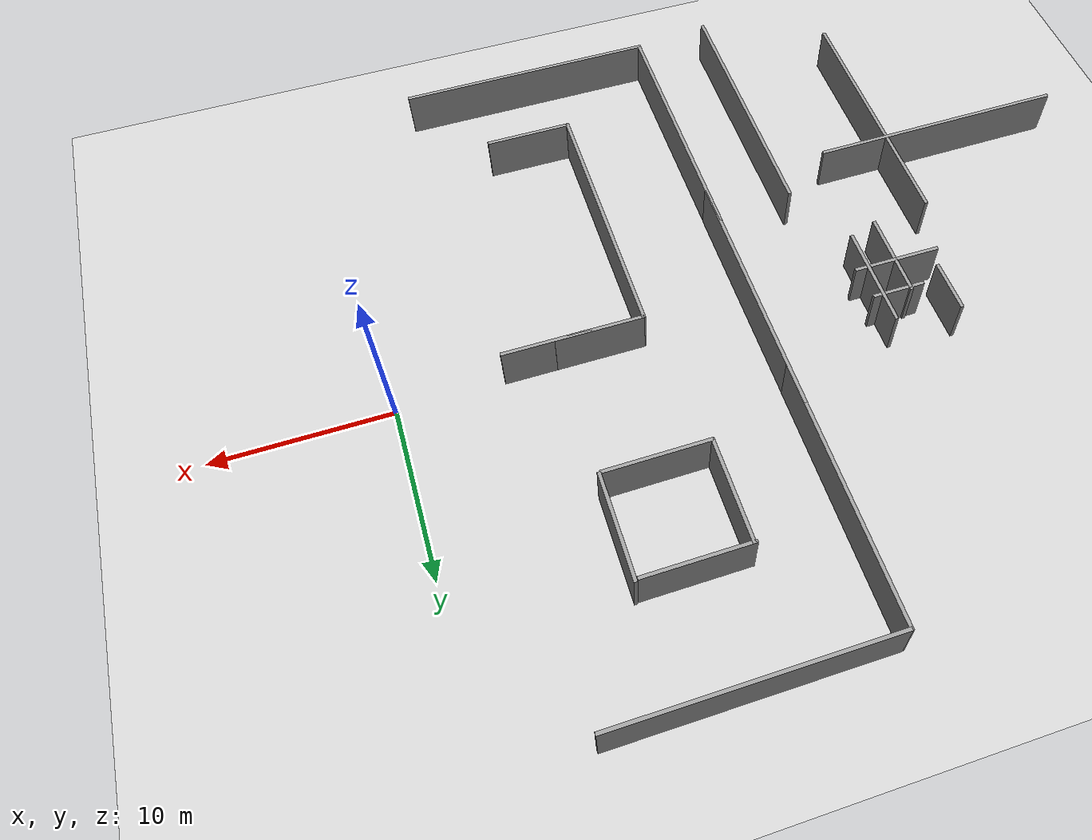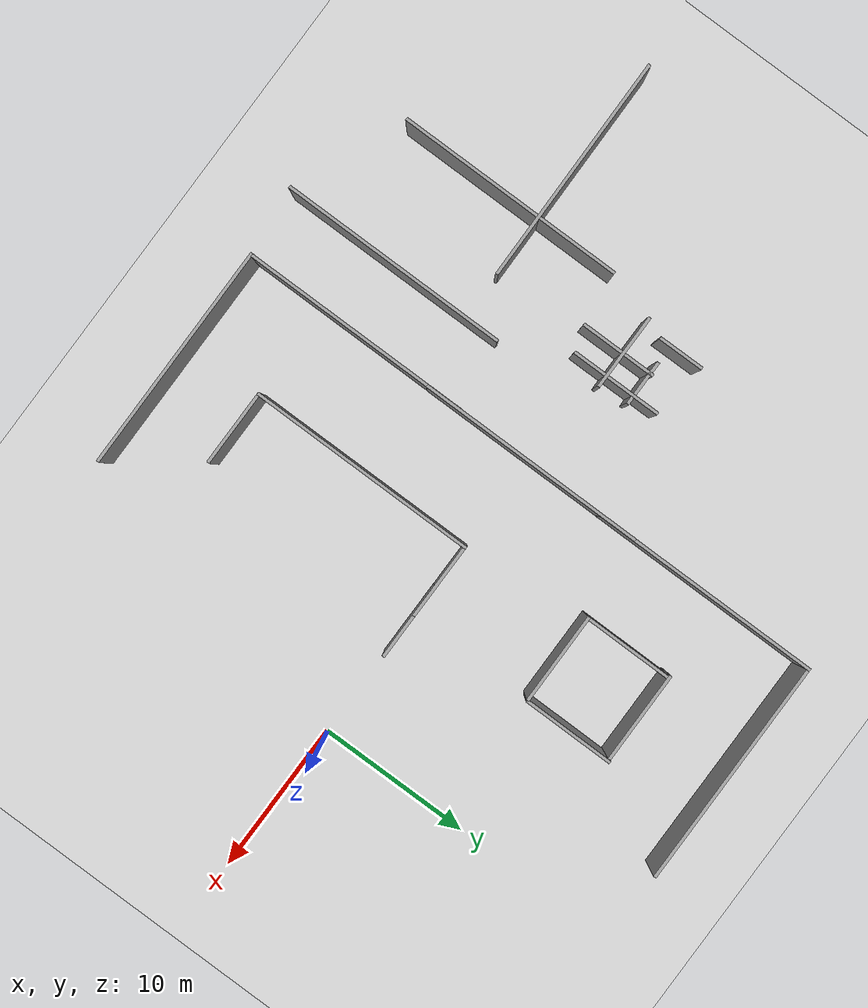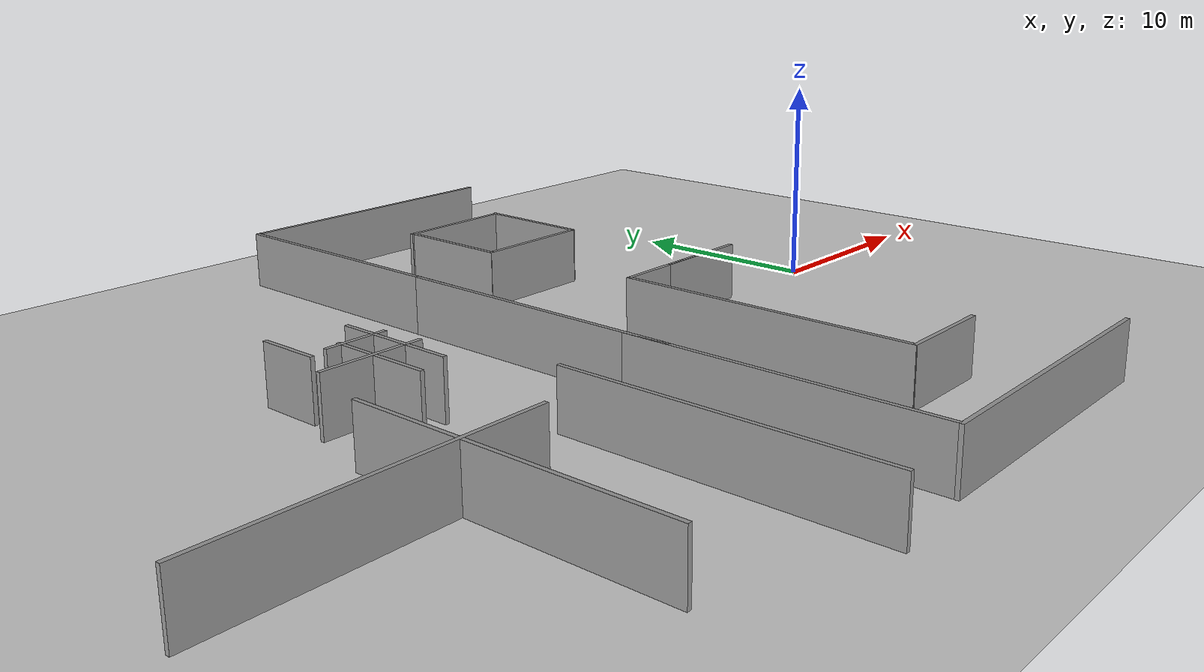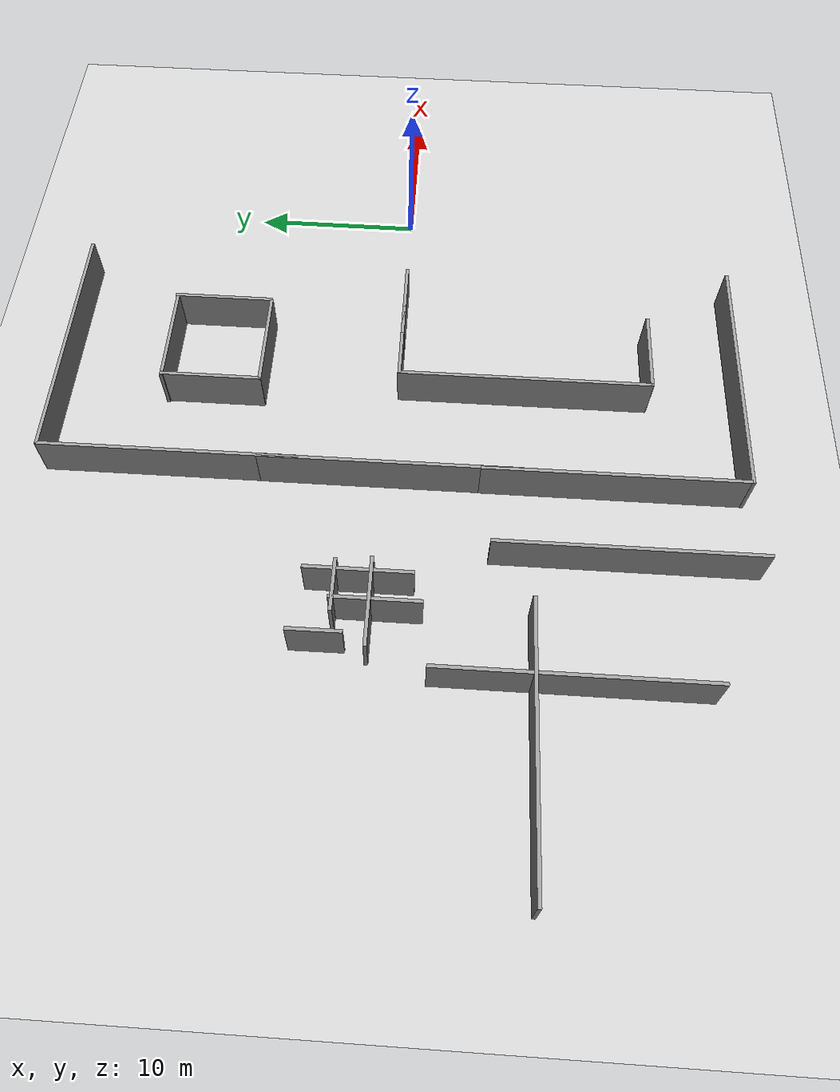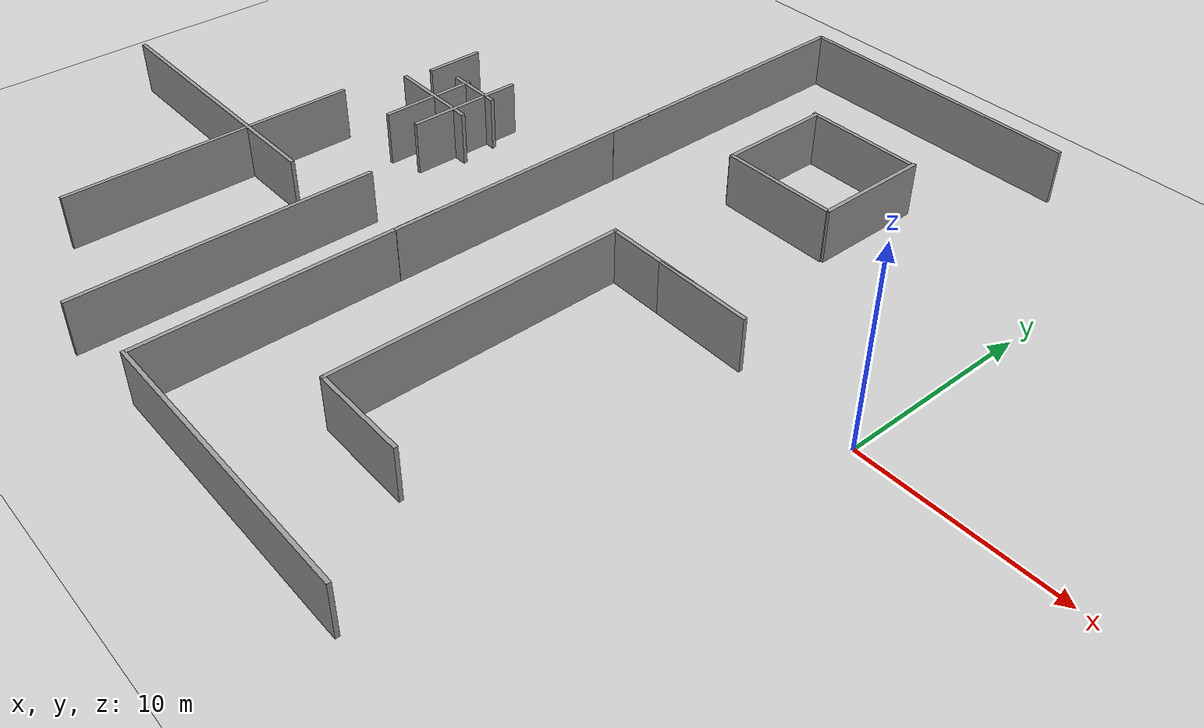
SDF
<sdf version="1.7">
 <world name="default">
  <model name="ground_plane">
   <static>1</static>
   <link name="link">
    <collision name="collision">
     <geometry><plane><normal>0 0 1</normal><size>100 100</size></plane></geometry>
     <surface>
      <contact><collide_bitmask>65535</collide_bitmask></contact>
      <friction><ode><mu>100</mu><mu2>50</mu2></ode></friction>
     </surface>
    </collision>
    <visual name="visual">
     <cast_shadows>0</cast_shadows>
     <geometry><plane><normal>0 0 1</normal><size>100 100</size></plane></geometry>
     <material>
      <script><uri>file://media/materials/scripts/gazebo.material</uri><name>Gazebo/Grey</name></script>
     </material>
    </visual>
   </link>
  </model>
  <model name="grey_wall_3_clone">
   <link name="link">
    <pose>0 0 1.4 0 -0 0</pose>
    <inertial>
     <mass>1</mass>
     <inertia><ixx>1</ixx><ixy>0</ixy><ixz>0</ixz><iyy>1</iyy><iyz>0</iyz><izz>1</izz></inertia>
    </inertial>
    <visual name="visual">
     <cast_shadows>0</cast_shadows>
     <geometry><box><size>3 0.2 2.8</size></box></geometry>
     <material>
      <script>
       <uri>model://grey_wall/materials/scripts</uri>
       <uri>model://grey_wall/materials/textures</uri>
       <name>vrc/grey_wall</name>
      </script>
      <shader type="pixel"><normal_map>__default__</normal_map></shader>
      <ambient>1 1 1 1</ambient>
      <diffuse>1 1 1 1</diffuse>
      <specular>0 0 0 1</specular>
      <emissive>0 0 0 1</emissive>
     </material>
    </visual>
    <collision name="collision">
     <geometry><box><size>2.96 0.2 2.8</size></box></geometry>
     <surface>
      <friction>
       <ode><mu>1</mu><mu2>1</mu2><fdir1>0 0 0</fdir1><slip1>0</slip1><slip2>0</slip2></ode>
       <torsional>
        <coefficient>1</coefficient>
        <patch_radius>0</patch_radius>
        <surface_radius>0</surface_radius>
        <use_patch_radius>1</use_patch_radius>
        <ode><slip>0</slip></ode>
       </torsional>
      </friction>
      <bounce><restitution_coefficient>0</restitution_coefficient><threshold>1e+06</threshold></bounce>
      <contact>
       <collide_without_contact>0</collide_without_contact>
       <collide_without_contact_bitmask>1</collide_without_contact_bitmask>
       <collide_bitmask>1</collide_bitmask>
       <ode>
        <soft_cfm>0</soft_cfm>
        <soft_erp>0.2</soft_erp>
        <kp>1e+13</kp>
        <kd>1</kd>
        <max_vel>0.01</max_vel>
        <min_depth>0</min_depth>
       </ode>
       <bullet>
        <split_impulse>1</split_impulse>
        <split_impulse_penetration_threshold>-0.01</split_impulse_penetration_threshold>
        <soft_cfm>0</soft_cfm>
        <soft_erp>0.2</soft_erp>
        <kp>1e+13</kp>
        <kd>1</kd>
       </bullet>
      </contact>
     </surface>
    </collision>
   </link>
   <static>1</static>
   <pose>-27.6676 2.53562 0 0 -0 0</pose>
  </model>
  <model name="grey_wall_5">
   <link name="link">
    <pose>0 0 1.4 0 -0 0</pose>
    <inertial>
     <mass>1</mass>
     <inertia><ixx>1</ixx><ixy>0</ixy><ixz>0</ixz><iyy>1</iyy><iyz>0</iyz><izz>1</izz></inertia>
    </inertial>
    <visual name="visual">
     <cast_shadows>0</cast_shadows>
     <geometry><box><size>5 0.2 2.8</size></box></geometry>
     <material>
      <script>
       <uri>model://grey_wall/materials/scripts</uri>
       <uri>model://grey_wall/materials/textures</uri>
       <name>vrc/grey_wall</name>
      </script>
      <shader type="pixel"><normal_map>__default__</normal_map></shader>
      <ambient>1 1 1 1</ambient>
      <diffuse>1 1 1 1</diffuse>
      <specular>0 0 0 1</specular>
      <emissive>0 0 0 1</emissive>
     </material>
    </visual>
    <collision name="collision">
     <geometry><box><size>5 0.2 2.8</size></box></geometry>
     <surface>
      <friction>
       <ode><mu>1</mu><mu2>1</mu2><fdir1>0 0 0</fdir1><slip1>0</slip1><slip2>0</slip2></ode>
       <torsional>
        <coefficient>1</coefficient>
        <patch_radius>0</patch_radius>
        <surface_radius>0</surface_radius>
        <use_patch_radius>1</use_patch_radius>
        <ode><slip>0</slip></ode>
       </torsional>
      </friction>
      <bounce><restitution_coefficient>0</restitution_coefficient><threshold>1e+06</threshold></bounce>
      <contact>
       <collide_without_contact>0</collide_without_contact>
       <collide_without_contact_bitmask>1</collide_without_contact_bitmask>
       <collide_bitmask>1</collide_bitmask>
       <ode>
        <soft_cfm>0</soft_cfm>
        <soft_erp>0.2</soft_erp>
        <kp>1e+13</kp>
        <kd>1</kd>
        <max_vel>0.01</max_vel>
        <min_depth>0</min_depth>
       </ode>
       <bullet>
        <split_impulse>1</split_impulse>
        <split_impulse_penetration_threshold>-0.01</split_impulse_penetration_threshold>
        <soft_cfm>0</soft_cfm>
        <soft_erp>0.2</soft_erp>
        <kp>1e+13</kp>
        <kd>1</kd>
       </bullet>
      </contact>
     </surface>
    </collision>
   </link>
   <static>1</static>
   <pose>-28.4609 0.59119 0 0 0 -0.000612</pose>
  </model>
  <model name="grey_wall_15_clone_0_clone">
   <link name="link">
    <pose>0 0 1.4 0 -0 0</pose>
    <inertial>
     <mass>1</mass>
     <inertia><ixx>1</ixx><ixy>0</ixy><ixz>0</ixz><iyy>1</iyy><iyz>0</iyz><izz>1</izz></inertia>
    </inertial>
    <visual name="visual">
     <cast_shadows>0</cast_shadows>
     <geometry><box><size>15 0.2 2.8</size></box></geometry>
     <material>
      <script>
       <uri>model://grey_wall/materials/scripts</uri>
       <uri>model://grey_wall/materials/textures</uri>
       <name>vrc/grey_wall</name>
      </script>
      <shader type="pixel"><normal_map>__default__</normal_map></shader>
      <ambient>1 1 1 1</ambient>
      <diffuse>1 1 1 1</diffuse>
      <specular>0 0 0 1</specular>
      <emissive>0 0 0 1</emissive>
     </material>
    </visual>
    <collision name="collision">
     <geometry><box><size>15 0.2 2.8</size></box></geometry>
     <surface>
      <friction>
       <ode><mu>1</mu><mu2>1</mu2><fdir1>0 0 0</fdir1><slip1>0</slip1><slip2>0</slip2></ode>
       <torsional>
        <coefficient>1</coefficient>
        <patch_radius>0</patch_radius>
        <surface_radius>0</surface_radius>
        <use_patch_radius>1</use_patch_radius>
        <ode><slip>0</slip></ode>
       </torsional>
      </friction>
      <bounce><restitution_coefficient>0</restitution_coefficient><threshold>1e+06</threshold></bounce>
      <contact>
       <collide_without_contact>0</collide_without_contact>
       <collide_without_contact_bitmask>1</collide_without_contact_bitmask>
       <collide_bitmask>1</collide_bitmask>
       <ode>
        <soft_cfm>0</soft_cfm>
        <soft_erp>0.2</soft_erp>
        <kp>1e+13</kp>
        <kd>1</kd>
        <max_vel>0.01</max_vel>
        <min_depth>0</min_depth>
       </ode>
       <bullet>
        <split_impulse>1</split_impulse>
        <split_impulse_penetration_threshold>-0.01</split_impulse_penetration_threshold>
        <soft_cfm>0</soft_cfm>
        <soft_erp>0.2</soft_erp>
        <kp>1e+13</kp>
        <kd>1</kd>
       </bullet>
      </contact>
     </surface>
    </collision>
   </link>
   <static>1</static>
   <pose>-31.7874 -10.0693 0 0 -0 1.57141</pose>
  </model>
  <model name="grey_wall_5_clone_clone_0_clone_0">
   <link name="link">
    <pose>0 0 1.4 0 -0 0</pose>
    <inertial>
     <mass>1</mass>
     <inertia><ixx>1</ixx><ixy>0</ixy><ixz>0</ixz><iyy>1</iyy><iyz>0</iyz><izz>1</izz></inertia>
    </inertial>
    <visual name="visual">
     <cast_shadows>0</cast_shadows>
     <geometry><box><size>5 0.2 2.8</size></box></geometry>
     <material>
      <script>
       <uri>model://grey_wall/materials/scripts</uri>
       <uri>model://grey_wall/materials/textures</uri>
       <name>vrc/grey_wall</name>
      </script>
      <shader type="pixel"><normal_map>__default__</normal_map></shader>
      <ambient>1 1 1 1</ambient>
      <diffuse>1 1 1 1</diffuse>
      <specular>0 0 0 1</specular>
      <emissive>0 0 0 1</emissive>
     </material>
    </visual>
    <collision name="collision">
     <geometry><box><size>5 0.2 2.8</size></box></geometry>
     <surface>
      <friction>
       <ode><mu>1</mu><mu2>1</mu2><fdir1>0 0 0</fdir1><slip1>0</slip1><slip2>0</slip2></ode>
       <torsional>
        <coefficient>1</coefficient>
        <patch_radius>0</patch_radius>
        <surface_radius>0</surface_radius>
        <use_patch_radius>1</use_patch_radius>
        <ode><slip>0</slip></ode>
       </torsional>
      </friction>
      <bounce><restitution_coefficient>0</restitution_coefficient><threshold>1e+06</threshold></bounce>
      <contact>
       <collide_without_contact>0</collide_without_contact>
       <collide_without_contact_bitmask>1</collide_without_contact_bitmask>
       <collide_bitmask>1</collide_bitmask>
       <ode>
        <soft_cfm>0</soft_cfm>
        <soft_erp>0.2</soft_erp>
        <kp>1e+13</kp>
        <kd>1</kd>
        <max_vel>0.01</max_vel>
        <min_depth>0</min_depth>
       </ode>
       <bullet>
        <split_impulse>1</split_impulse>
        <split_impulse_penetration_threshold>-0.01</split_impulse_penetration_threshold>
        <soft_cfm>0</soft_cfm>
        <soft_erp>0.2</soft_erp>
        <kp>1e+13</kp>
        <kd>1</kd>
       </bullet>
      </contact>
     </surface>
    </collision>
   </link>
   <static>1</static>
   <pose>-28.3665 0.251575 0 0 -0 1.57141</pose>
  </model>
  <model name="grey_wall_6_clone">
   <link name="link">
    <pose>0 0 1.4 0 -0 0</pose>
    <inertial>
     <mass>1</mass>
     <inertia><ixx>1</ixx><ixy>0</ixy><ixz>0</ixz><iyy>1</iyy><iyz>0</iyz><izz>1</izz></inertia>
    </inertial>
    <visual name="visual">
     <cast_shadows>0</cast_shadows>
     <geometry><box><size>6 0.2 2.8</size></box></geometry>
     <material>
      <script>
       <uri>model://grey_wall/materials/scripts</uri>
       <uri>model://grey_wall/materials/textures</uri>
       <name>vrc/grey_wall</name>
      </script>
      <shader type="pixel"><normal_map>__default__</normal_map></shader>
      <ambient>1 1 1 1</ambient>
      <diffuse>1 1 1 1</diffuse>
      <specular>0 0 0 1</specular>
      <emissive>0 0 0 1</emissive>
     </material>
    </visual>
    <collision name="collision">
     <geometry><box><size>6 0.2 2.8</size></box></geometry>
     <surface>
      <friction>
       <ode><mu>1</mu><mu2>1</mu2><fdir1>0 0 0</fdir1><slip1>0</slip1><slip2>0</slip2></ode>
       <torsional>
        <coefficient>1</coefficient>
        <patch_radius>0</patch_radius>
        <surface_radius>0</surface_radius>
        <use_patch_radius>1</use_patch_radius>
        <ode><slip>0</slip></ode>
       </torsional>
      </friction>
      <bounce><restitution_coefficient>0</restitution_coefficient><threshold>1e+06</threshold></bounce>
      <contact>
       <collide_without_contact>0</collide_without_contact>
       <collide_without_contact_bitmask>1</collide_without_contact_bitmask>
       <collide_bitmask>1</collide_bitmask>
       <ode>
        <soft_cfm>0</soft_cfm>
        <soft_erp>0.2</soft_erp>
        <kp>1e+13</kp>
        <kd>1</kd>
        <max_vel>0.01</max_vel>
        <min_depth>0</min_depth>
       </ode>
       <bullet>
        <split_impulse>1</split_impulse>
        <split_impulse_penetration_threshold>-0.01</split_impulse_penetration_threshold>
        <soft_cfm>0</soft_cfm>
        <soft_erp>0.2</soft_erp>
        <kp>1e+13</kp>
        <kd>1</kd>
       </bullet>
      </contact>
     </surface>
    </collision>
   </link>
   <static>1</static>
   <pose>-26.7573 1.28858 0 0 -0 1.57141</pose>
  </model>
  <model name="grey_wall_2_clone">
   <link name="link">
    <pose>0 0 1.4 0 -0 0</pose>
    <inertial>
     <mass>1</mass>
     <inertia><ixx>1</ixx><ixy>0</ixy><ixz>0</ixz><iyy>1</iyy><iyz>0</iyz><izz>1</izz></inertia>
    </inertial>
    <visual name="visual">
     <cast_shadows>0</cast_shadows>
     <geometry><box><size>3 0.2 2.8</size></box></geometry>
     <material>
      <script>
       <uri>model://grey_wall/materials/scripts</uri>
       <uri>model://grey_wall/materials/textures</uri>
       <name>vrc/grey_wall</name>
      </script>
      <shader type="pixel"><normal_map>__default__</normal_map></shader>
      <ambient>1 1 1 1</ambient>
      <diffuse>1 1 1 1</diffuse>
      <specular>0 0 0 1</specular>
      <emissive>0 0 0 1</emissive>
     </material>
    </visual>
    <collision name="collision">
     <geometry><box><size>3 0.2 2.8</size></box></geometry>
     <surface>
      <friction>
       <ode><mu>1</mu><mu2>1</mu2><fdir1>0 0 0</fdir1><slip1>0</slip1><slip2>0</slip2></ode>
       <torsional>
        <coefficient>1</coefficient>
        <patch_radius>0</patch_radius>
        <surface_radius>0</surface_radius>
        <use_patch_radius>1</use_patch_radius>
        <ode><slip>0</slip></ode>
       </torsional>
      </friction>
      <bounce><restitution_coefficient>0</restitution_coefficient><threshold>1e+06</threshold></bounce>
      <contact>
       <collide_without_contact>0</collide_without_contact>
       <collide_without_contact_bitmask>1</collide_without_contact_bitmask>
       <collide_bitmask>1</collide_bitmask>
       <ode>
        <soft_cfm>0</soft_cfm>
        <soft_erp>0.2</soft_erp>
        <kp>1e+13</kp>
        <kd>1</kd>
        <max_vel>0.01</max_vel>
        <min_depth>0</min_depth>
       </ode>
       <bullet>
        <split_impulse>1</split_impulse>
        <split_impulse_penetration_threshold>-0.01</split_impulse_penetration_threshold>
        <soft_cfm>0</soft_cfm>
        <soft_erp>0.2</soft_erp>
        <kp>1e+13</kp>
        <kd>1</kd>
       </bullet>
      </contact>
     </surface>
    </collision>
   </link>
   <static>1</static>
   <pose>-30.3361 3.25719 0.16865 0 0 -1.56489</pose>
  </model>
  <model name="grey_wall_15_clone_0_clone_clone_0">
   <link name="link">
    <pose>0 0 1.4 0 -0 0</pose>
    <inertial>
     <mass>1</mass>
     <inertia><ixx>1</ixx><ixy>0</ixy><ixz>0</ixz><iyy>1</iyy><iyz>0</iyz><izz>1</izz></inertia>
    </inertial>
    <visual name="visual">
     <cast_shadows>0</cast_shadows>
     <geometry><box><size>15 0.2 2.8</size></box></geometry>
     <material>
      <script>
       <uri>model://grey_wall/materials/scripts</uri>
       <uri>model://grey_wall/materials/textures</uri>
       <name>vrc/grey_wall</name>
      </script>
      <shader type="pixel"><normal_map>__default__</normal_map></shader>
      <ambient>1 1 1 1</ambient>
      <diffuse>1 1 1 1</diffuse>
      <specular>0 0 0 1</specular>
      <emissive>0 0 0 1</emissive>
     </material>
    </visual>
    <collision name="collision">
     <geometry><box><size>15 0.2 2.8</size></box></geometry>
     <surface>
      <friction>
       <ode><mu>1</mu><mu2>1</mu2><fdir1>0 0 0</fdir1><slip1>0</slip1><slip2>0</slip2></ode>
       <torsional>
        <coefficient>1</coefficient>
        <patch_radius>0</patch_radius>
        <surface_radius>0</surface_radius>
        <use_patch_radius>1</use_patch_radius>
        <ode><slip>0</slip></ode>
       </torsional>
      </friction>
      <bounce><restitution_coefficient>0</restitution_coefficient><threshold>1e+06</threshold></bounce>
      <contact>
       <collide_without_contact>0</collide_without_contact>
       <collide_without_contact_bitmask>1</collide_without_contact_bitmask>
       <collide_bitmask>1</collide_bitmask>
       <ode>
        <soft_cfm>0</soft_cfm>
        <soft_erp>0.2</soft_erp>
        <kp>1e+13</kp>
        <kd>1</kd>
        <max_vel>0.01</max_vel>
        <min_depth>0</min_depth>
       </ode>
       <bullet>
        <split_impulse>1</split_impulse>
        <split_impulse_penetration_threshold>-0.01</split_impulse_penetration_threshold>
        <soft_cfm>0</soft_cfm>
        <soft_erp>0.2</soft_erp>
        <kp>1e+13</kp>
        <kd>1</kd>
       </bullet>
      </contact>
     </surface>
    </collision>
   </link>
   <static>1</static>
   <pose>-20.114 0.093653 0 0 -0 1.57141</pose>
  </model>
  <model name="grey_wall_15_clone_0_clone_clone_0_clone">
   <link name="link">
    <pose>0 0 1.4 0 -0 0</pose>
    <inertial>
     <mass>1</mass>
     <inertia><ixx>1</ixx><ixy>0</ixy><ixz>0</ixz><iyy>1</iyy><iyz>0</iyz><izz>1</izz></inertia>
    </inertial>
    <visual name="visual">
     <cast_shadows>0</cast_shadows>
     <geometry><box><size>15 0.2 2.8</size></box></geometry>
     <material>
      <script>
       <uri>model://grey_wall/materials/scripts</uri>
       <uri>model://grey_wall/materials/textures</uri>
       <name>vrc/grey_wall</name>
      </script>
      <shader type="pixel"><normal_map>__default__</normal_map></shader>
      <ambient>1 1 1 1</ambient>
      <diffuse>1 1 1 1</diffuse>
      <specular>0 0 0 1</specular>
      <emissive>0 0 0 1</emissive>
     </material>
    </visual>
    <collision name="collision">
     <geometry><box><size>15 0.2 2.8</size></box></geometry>
     <surface>
      <friction>
       <ode><mu>1</mu><mu2>1</mu2><fdir1>0 0 0</fdir1><slip1>0</slip1><slip2>0</slip2></ode>
       <torsional>
        <coefficient>1</coefficient>
        <patch_radius>0</patch_radius>
        <surface_radius>0</surface_radius>
        <use_patch_radius>1</use_patch_radius>
        <ode><slip>0</slip></ode>
       </torsional>
      </friction>
      <bounce><restitution_coefficient>0</restitution_coefficient><threshold>1e+06</threshold></bounce>
      <contact>
       <collide_without_contact>0</collide_without_contact>
       <collide_without_contact_bitmask>1</collide_without_contact_bitmask>
       <collide_bitmask>1</collide_bitmask>
       <ode>
        <soft_cfm>0</soft_cfm>
        <soft_erp>0.2</soft_erp>
        <kp>1e+13</kp>
        <kd>1</kd>
        <max_vel>0.01</max_vel>
        <min_depth>0</min_depth>
       </ode>
       <bullet>
        <split_impulse>1</split_impulse>
        <split_impulse_penetration_threshold>-0.01</split_impulse_penetration_threshold>
        <soft_cfm>0</soft_cfm>
        <soft_erp>0.2</soft_erp>
        <kp>1e+13</kp>
        <kd>1</kd>
       </bullet>
      </contact>
     </surface>
    </collision>
   </link>
   <static>1</static>
   <pose>-20.1223 -12.5258 0 0 -0 1.57141</pose>
  </model>
  <model name="grey_wall_15_clone_0_clone_clone_0_clone_0">
   <link name="link">
    <pose>0 0 1.4 0 -0 0</pose>
    <inertial>
     <mass>1</mass>
     <inertia><ixx>1</ixx><ixy>0</ixy><ixz>0</ixz><iyy>1</iyy><iyz>0</iyz><izz>1</izz></inertia>
    </inertial>
    <visual name="visual">
     <cast_shadows>0</cast_shadows>
     <geometry><box><size>15 0.2 2.8</size></box></geometry>
     <material>
      <script>
       <uri>model://grey_wall/materials/scripts</uri>
       <uri>model://grey_wall/materials/textures</uri>
       <name>vrc/grey_wall</name>
      </script>
      <shader type="pixel"><normal_map>__default__</normal_map></shader>
      <ambient>1 1 1 1</ambient>
      <diffuse>1 1 1 1</diffuse>
      <specular>0 0 0 1</specular>
      <emissive>0 0 0 1</emissive>
     </material>
    </visual>
    <collision name="collision">
     <geometry><box><size>15 0.2 2.8</size></box></geometry>
     <surface>
      <friction>
       <ode><mu>1</mu><mu2>1</mu2><fdir1>0 0 0</fdir1><slip1>0</slip1><slip2>0</slip2></ode>
       <torsional>
        <coefficient>1</coefficient>
        <patch_radius>0</patch_radius>
        <surface_radius>0</surface_radius>
        <use_patch_radius>1</use_patch_radius>
        <ode><slip>0</slip></ode>
       </torsional>
      </friction>
      <bounce><restitution_coefficient>0</restitution_coefficient><threshold>1e+06</threshold></bounce>
      <contact>
       <collide_without_contact>0</collide_without_contact>
       <collide_without_contact_bitmask>1</collide_without_contact_bitmask>
       <collide_bitmask>1</collide_bitmask>
       <ode>
        <soft_cfm>0</soft_cfm>
        <soft_erp>0.2</soft_erp>
        <kp>1e+13</kp>
        <kd>1</kd>
        <max_vel>0.01</max_vel>
        <min_depth>0</min_depth>
       </ode>
       <bullet>
        <split_impulse>1</split_impulse>
        <split_impulse_penetration_threshold>-0.01</split_impulse_penetration_threshold>
        <soft_cfm>0</soft_cfm>
        <soft_erp>0.2</soft_erp>
        <kp>1e+13</kp>
        <kd>1</kd>
       </bullet>
      </contact>
     </surface>
    </collision>
   </link>
   <static>1</static>
   <pose>-20.1116 12.6835 0 0 -0 1.57141</pose>
  </model>
  <model name="grey_wall_15_clone_0_clone_clone_clone_1">
   <link name="link">
    <pose>0 0 1.4 0 -0 0</pose>
    <inertial>
     <mass>1</mass>
     <inertia><ixx>1</ixx><ixy>0</ixy><ixz>0</ixz><iyy>1</iyy><iyz>0</iyz><izz>1</izz></inertia>
    </inertial>
    <visual name="visual">
     <cast_shadows>0</cast_shadows>
     <geometry><box><size>15 0.2 2.8</size></box></geometry>
     <material>
      <script>
       <uri>model://grey_wall/materials/scripts</uri>
       <uri>model://grey_wall/materials/textures</uri>
       <name>vrc/grey_wall</name>
      </script>
      <shader type="pixel"><normal_map>__default__</normal_map></shader>
      <ambient>1 1 1 1</ambient>
      <diffuse>1 1 1 1</diffuse>
      <specular>0 0 0 1</specular>
      <emissive>0 0 0 1</emissive>
     </material>
    </visual>
    <collision name="collision">
     <geometry><box><size>15 0.2 2.8</size></box></geometry>
     <surface>
      <friction>
       <ode><mu>1</mu><mu2>1</mu2><fdir1>0 0 0</fdir1><slip1>0</slip1><slip2>0</slip2></ode>
       <torsional>
        <coefficient>1</coefficient>
        <patch_radius>0</patch_radius>
        <surface_radius>0</surface_radius>
        <use_patch_radius>1</use_patch_radius>
        <ode><slip>0</slip></ode>
       </torsional>
      </friction>
      <bounce><restitution_coefficient>0</restitution_coefficient><threshold>1e+06</threshold></bounce>
      <contact>
       <collide_without_contact>0</collide_without_contact>
       <collide_without_contact_bitmask>1</collide_without_contact_bitmask>
       <collide_bitmask>1</collide_bitmask>
       <ode>
        <soft_cfm>0</soft_cfm>
        <soft_erp>0.2</soft_erp>
        <kp>1e+13</kp>
        <kd>1</kd>
        <max_vel>0.01</max_vel>
        <min_depth>0</min_depth>
       </ode>
       <bullet>
        <split_impulse>1</split_impulse>
        <split_impulse_penetration_threshold>-0.01</split_impulse_penetration_threshold>
        <soft_cfm>0</soft_cfm>
        <soft_erp>0.2</soft_erp>
        <kp>1e+13</kp>
        <kd>1</kd>
       </bullet>
      </contact>
     </surface>
    </collision>
   </link>
   <static>1</static>
   <pose>-12.651 20.1007 0 0 -0 0.001488</pose>
  </model>
  <model name="grey_wall_15_clone_0_clone_clone_clone_1_clone">
   <link name="link">
    <pose>0 0 1.4 0 -0 0</pose>
    <inertial>
     <mass>1</mass>
     <inertia><ixx>1</ixx><ixy>0</ixy><ixz>0</ixz><iyy>1</iyy><iyz>0</iyz><izz>1</izz></inertia>
    </inertial>
    <visual name="visual">
     <cast_shadows>0</cast_shadows>
     <geometry><box><size>15 0.2 2.8</size></box></geometry>
     <material>
      <script>
       <uri>model://grey_wall/materials/scripts</uri>
       <uri>model://grey_wall/materials/textures</uri>
       <name>vrc/grey_wall</name>
      </script>
      <shader type="pixel"><normal_map>__default__</normal_map></shader>
      <ambient>1 1 1 1</ambient>
      <diffuse>1 1 1 1</diffuse>
      <specular>0 0 0 1</specular>
      <emissive>0 0 0 1</emissive>
     </material>
    </visual>
    <collision name="collision">
     <geometry><box><size>15 0.2 2.8</size></box></geometry>
     <surface>
      <friction>
       <ode><mu>1</mu><mu2>1</mu2><fdir1>0 0 0</fdir1><slip1>0</slip1><slip2>0</slip2></ode>
       <torsional>
        <coefficient>1</coefficient>
        <patch_radius>0</patch_radius>
        <surface_radius>0</surface_radius>
        <use_patch_radius>1</use_patch_radius>
        <ode><slip>0</slip></ode>
       </torsional>
      </friction>
      <bounce><restitution_coefficient>0</restitution_coefficient><threshold>1e+06</threshold></bounce>
      <contact>
       <collide_without_contact>0</collide_without_contact>
       <collide_without_contact_bitmask>1</collide_without_contact_bitmask>
       <collide_bitmask>1</collide_bitmask>
       <ode>
        <soft_cfm>0</soft_cfm>
        <soft_erp>0.2</soft_erp>
        <kp>1e+13</kp>
        <kd>1</kd>
        <max_vel>0.01</max_vel>
        <min_depth>0</min_depth>
       </ode>
       <bullet>
        <split_impulse>1</split_impulse>
        <split_impulse_penetration_threshold>-0.01</split_impulse_penetration_threshold>
        <soft_cfm>0</soft_cfm>
        <soft_erp>0.2</soft_erp>
        <kp>1e+13</kp>
        <kd>1</kd>
       </bullet>
      </contact>
     </surface>
    </collision>
   </link>
   <static>1</static>
   <pose>-12.7256 -20.0718 0 0 -0 0.001488</pose>
  </model>
  <model name="grey_wall_6_clone_0">
   <link name="link">
    <pose>0 0 1.4 0 -0 0</pose>
    <inertial>
     <mass>1</mass>
     <inertia><ixx>1</ixx><ixy>0</ixy><ixz>0</ixz><iyy>1</iyy><iyz>0</iyz><izz>1</izz></inertia>
    </inertial>
    <visual name="visual">
     <cast_shadows>0</cast_shadows>
     <geometry><box><size>6 0.2 2.8</size></box></geometry>
     <material>
      <script>
       <uri>model://grey_wall/materials/scripts</uri>
       <uri>model://grey_wall/materials/textures</uri>
       <name>vrc/grey_wall</name>
      </script>
      <shader type="pixel"><normal_map>__default__</normal_map></shader>
      <ambient>1 1 1 1</ambient>
      <diffuse>1 1 1 1</diffuse>
      <specular>0 0 0 1</specular>
      <emissive>0 0 0 1</emissive>
     </material>
    </visual>
    <collision name="collision">
     <geometry><box><size>6 0.2 2.8</size></box></geometry>
     <surface>
      <friction>
       <ode><mu>1</mu><mu2>1</mu2><fdir1>0 0 0</fdir1><slip1>0</slip1><slip2>0</slip2></ode>
       <torsional>
        <coefficient>1</coefficient>
        <patch_radius>0</patch_radius>
        <surface_radius>0</surface_radius>
        <use_patch_radius>1</use_patch_radius>
        <ode><slip>0</slip></ode>
       </torsional>
      </friction>
      <bounce><restitution_coefficient>0</restitution_coefficient><threshold>1e+06</threshold></bounce>
      <contact>
       <collide_without_contact>0</collide_without_contact>
       <collide_without_contact_bitmask>1</collide_without_contact_bitmask>
       <collide_bitmask>1</collide_bitmask>
       <ode>
        <soft_cfm>0</soft_cfm>
        <soft_erp>0.2</soft_erp>
        <kp>1e+13</kp>
        <kd>1</kd>
        <max_vel>0.01</max_vel>
        <min_depth>0</min_depth>
       </ode>
       <bullet>
        <split_impulse>1</split_impulse>
        <split_impulse_penetration_threshold>-0.01</split_impulse_penetration_threshold>
        <soft_cfm>0</soft_cfm>
        <soft_erp>0.2</soft_erp>
        <kp>1e+13</kp>
        <kd>1</kd>
       </bullet>
      </contact>
     </surface>
    </collision>
   </link>
   <static>1</static>
   <pose>-12.0539 13.9243 0 0 0 -3.13795</pose>
  </model>
  <model name="grey_wall_6_clone_0_clone">
   <link name="link">
    <pose>0 0 1.4 0 -0 0</pose>
    <inertial>
     <mass>1</mass>
     <inertia><ixx>1</ixx><ixy>0</ixy><ixz>0</ixz><iyy>1</iyy><iyz>0</iyz><izz>1</izz></inertia>
    </inertial>
    <visual name="visual">
     <cast_shadows>0</cast_shadows>
     <geometry><box><size>6 0.2 2.8</size></box></geometry>
     <material>
      <script>
       <uri>model://grey_wall/materials/scripts</uri>
       <uri>model://grey_wall/materials/textures</uri>
       <name>vrc/grey_wall</name>
      </script>
      <shader type="pixel"><normal_map>__default__</normal_map></shader>
      <ambient>1 1 1 1</ambient>
      <diffuse>1 1 1 1</diffuse>
      <specular>0 0 0 1</specular>
      <emissive>0 0 0 1</emissive>
     </material>
    </visual>
    <collision name="collision">
     <geometry><box><size>6 0.2 2.8</size></box></geometry>
     <surface>
      <friction>
       <ode><mu>1</mu><mu2>1</mu2><fdir1>0 0 0</fdir1><slip1>0</slip1><slip2>0</slip2></ode>
       <torsional>
        <coefficient>1</coefficient>
        <patch_radius>0</patch_radius>
        <surface_radius>0</surface_radius>
        <use_patch_radius>1</use_patch_radius>
        <ode><slip>0</slip></ode>
       </torsional>
      </friction>
      <bounce><restitution_coefficient>0</restitution_coefficient><threshold>1e+06</threshold></bounce>
      <contact>
       <collide_without_contact>0</collide_without_contact>
       <collide_without_contact_bitmask>1</collide_without_contact_bitmask>
       <collide_bitmask>1</collide_bitmask>
       <ode>
        <soft_cfm>0</soft_cfm>
        <soft_erp>0.2</soft_erp>
        <kp>1e+13</kp>
        <kd>1</kd>
        <max_vel>0.01</max_vel>
        <min_depth>0</min_depth>
       </ode>
       <bullet>
        <split_impulse>1</split_impulse>
        <split_impulse_penetration_threshold>-0.01</split_impulse_penetration_threshold>
        <soft_cfm>0</soft_cfm>
        <soft_erp>0.2</soft_erp>
        <kp>1e+13</kp>
        <kd>1</kd>
       </bullet>
      </contact>
     </surface>
    </collision>
   </link>
   <static>1</static>
   <pose>-11.9672 8.11602 0 0 0 -3.13795</pose>
  </model>
  <model name="grey_wall_6_clone_0_clone_clone">
   <link name="link">
    <pose>0 0 1.4 0 -0 0</pose>
    <inertial>
     <mass>1</mass>
     <inertia><ixx>1</ixx><ixy>0</ixy><ixz>0</ixz><iyy>1</iyy><iyz>0</iyz><izz>1</izz></inertia>
    </inertial>
    <visual name="visual">
     <cast_shadows>0</cast_shadows>
     <geometry><box><size>6 0.2 2.8</size></box></geometry>
     <material>
      <script>
       <uri>model://grey_wall/materials/scripts</uri>
       <uri>model://grey_wall/materials/textures</uri>
       <name>vrc/grey_wall</name>
      </script>
      <shader type="pixel"><normal_map>__default__</normal_map></shader>
      <ambient>1 1 1 1</ambient>
      <diffuse>1 1 1 1</diffuse>
      <specular>0 0 0 1</specular>
      <emissive>0 0 0 1</emissive>
     </material>
    </visual>
    <collision name="collision">
     <geometry><box><size>6 0.2 2.8</size></box></geometry>
     <surface>
      <friction>
       <ode><mu>1</mu><mu2>1</mu2><fdir1>0 0 0</fdir1><slip1>0</slip1><slip2>0</slip2></ode>
       <torsional>
        <coefficient>1</coefficient>
        <patch_radius>0</patch_radius>
        <surface_radius>0</surface_radius>
        <use_patch_radius>1</use_patch_radius>
        <ode><slip>0</slip></ode>
       </torsional>
      </friction>
      <bounce><restitution_coefficient>0</restitution_coefficient><threshold>1e+06</threshold></bounce>
      <contact>
       <collide_without_contact>0</collide_without_contact>
       <collide_without_contact_bitmask>1</collide_without_contact_bitmask>
       <collide_bitmask>1</collide_bitmask>
       <ode>
        <soft_cfm>0</soft_cfm>
        <soft_erp>0.2</soft_erp>
        <kp>1e+13</kp>
        <kd>1</kd>
        <max_vel>0.01</max_vel>
        <min_depth>0</min_depth>
       </ode>
       <bullet>
        <split_impulse>1</split_impulse>
        <split_impulse_penetration_threshold>-0.01</split_impulse_penetration_threshold>
        <soft_cfm>0</soft_cfm>
        <soft_erp>0.2</soft_erp>
        <kp>1e+13</kp>
        <kd>1</kd>
       </bullet>
      </contact>
     </surface>
    </collision>
   </link>
   <static>1</static>
   <pose>-8.93778 11.0965 0 0 -0 1.56941</pose>
  </model>
  <model name="grey_wall_6_clone_0_clone_clone_clone">
   <link name="link">
    <pose>0 0 1.4 0 -0 0</pose>
    <inertial>
     <mass>1</mass>
     <inertia><ixx>1</ixx><ixy>0</ixy><ixz>0</ixz><iyy>1</iyy><iyz>0</iyz><izz>1</izz></inertia>
    </inertial>
    <visual name="visual">
     <cast_shadows>0</cast_shadows>
     <geometry><box><size>6 0.2 2.8</size></box></geometry>
     <material>
      <script>
       <uri>model://grey_wall/materials/scripts</uri>
       <uri>model://grey_wall/materials/textures</uri>
       <name>vrc/grey_wall</name>
      </script>
      <shader type="pixel"><normal_map>__default__</normal_map></shader>
      <ambient>1 1 1 1</ambient>
      <diffuse>1 1 1 1</diffuse>
      <specular>0 0 0 1</specular>
      <emissive>0 0 0 1</emissive>
     </material>
    </visual>
    <collision name="collision">
     <geometry><box><size>6 0.2 2.8</size></box></geometry>
     <surface>
      <friction>
       <ode><mu>1</mu><mu2>1</mu2><fdir1>0 0 0</fdir1><slip1>0</slip1><slip2>0</slip2></ode>
       <torsional>
        <coefficient>1</coefficient>
        <patch_radius>0</patch_radius>
        <surface_radius>0</surface_radius>
        <use_patch_radius>1</use_patch_radius>
        <ode><slip>0</slip></ode>
       </torsional>
      </friction>
      <bounce><restitution_coefficient>0</restitution_coefficient><threshold>1e+06</threshold></bounce>
      <contact>
       <collide_without_contact>0</collide_without_contact>
       <collide_without_contact_bitmask>1</collide_without_contact_bitmask>
       <collide_bitmask>1</collide_bitmask>
       <ode>
        <soft_cfm>0</soft_cfm>
        <soft_erp>0.2</soft_erp>
        <kp>1e+13</kp>
        <kd>1</kd>
        <max_vel>0.01</max_vel>
        <min_depth>0</min_depth>
       </ode>
       <bullet>
        <split_impulse>1</split_impulse>
        <split_impulse_penetration_threshold>-0.01</split_impulse_penetration_threshold>
        <soft_cfm>0</soft_cfm>
        <soft_erp>0.2</soft_erp>
        <kp>1e+13</kp>
        <kd>1</kd>
       </bullet>
      </contact>
     </surface>
    </collision>
   </link>
   <static>1</static>
   <pose>-14.8767 11.0071 0 0 -0 1.56941</pose>
  </model>
  <model name="grey_wall_15_clone_0_clone_clone_1">
   <link name="link">
    <pose>0 0 1.4 0 -0 0</pose>
    <inertial>
     <mass>1</mass>
     <inertia><ixx>1</ixx><ixy>0</ixy><ixz>0</ixz><iyy>1</iyy><iyz>0</iyz><izz>1</izz></inertia>
    </inertial>
    <visual name="visual">
     <cast_shadows>0</cast_shadows>
     <geometry><box><size>15 0.2 2.8</size></box></geometry>
     <material>
      <script>
       <uri>model://grey_wall/materials/scripts</uri>
       <uri>model://grey_wall/materials/textures</uri>
       <name>vrc/grey_wall</name>
      </script>
      <shader type="pixel"><normal_map>__default__</normal_map></shader>
      <ambient>1 1 1 1</ambient>
      <diffuse>1 1 1 1</diffuse>
      <specular>0 0 0 1</specular>
      <emissive>0 0 0 1</emissive>
     </material>
    </visual>
    <collision name="collision">
     <geometry><box><size>15 0.2 2.8</size></box></geometry>
     <surface>
      <friction>
       <ode><mu>1</mu><mu2>1</mu2><fdir1>0 0 0</fdir1><slip1>0</slip1><slip2>0</slip2></ode>
       <torsional>
        <coefficient>1</coefficient>
        <patch_radius>0</patch_radius>
        <surface_radius>0</surface_radius>
        <use_patch_radius>1</use_patch_radius>
        <ode><slip>0</slip></ode>
       </torsional>
      </friction>
      <bounce><restitution_coefficient>0</restitution_coefficient><threshold>1e+06</threshold></bounce>
      <contact>
       <collide_without_contact>0</collide_without_contact>
       <collide_without_contact_bitmask>1</collide_without_contact_bitmask>
       <collide_bitmask>1</collide_bitmask>
       <ode>
        <soft_cfm>0</soft_cfm>
        <soft_erp>0.2</soft_erp>
        <kp>1e+13</kp>
        <kd>1</kd>
        <max_vel>0.01</max_vel>
        <min_depth>0</min_depth>
       </ode>
       <bullet>
        <split_impulse>1</split_impulse>
        <split_impulse_penetration_threshold>-0.01</split_impulse_penetration_threshold>
        <soft_cfm>0</soft_cfm>
        <soft_erp>0.2</soft_erp>
        <kp>1e+13</kp>
        <kd>1</kd>
       </bullet>
      </contact>
     </surface>
    </collision>
   </link>
   <static>1</static>
   <pose>-13.9145 -7.47366 0 0 -0 1.57141</pose>
  </model>
  <model name="grey_wall_15_clone_0_clone_clone_2">
   <link name="link">
    <pose>0 0 1.4 0 -0 0</pose>
    <inertial>
     <mass>1</mass>
     <inertia><ixx>1</ixx><ixy>0</ixy><ixz>0</ixz><iyy>1</iyy><iyz>0</iyz><izz>1</izz></inertia>
    </inertial>
    <visual name="visual">
     <cast_shadows>0</cast_shadows>
     <geometry><box><size>15 0.2 2.8</size></box></geometry>
     <material>
      <script>
       <uri>model://grey_wall/materials/scripts</uri>
       <uri>model://grey_wall/materials/textures</uri>
       <name>vrc/grey_wall</name>
      </script>
      <shader type="pixel"><normal_map>__default__</normal_map></shader>
      <ambient>1 1 1 1</ambient>
      <diffuse>1 1 1 1</diffuse>
      <specular>0 0 0 1</specular>
      <emissive>0 0 0 1</emissive>
     </material>
    </visual>
    <collision name="collision">
     <geometry><box><size>15 0.2 2.8</size></box></geometry>
     <surface>
      <friction>
       <ode><mu>1</mu><mu2>1</mu2><fdir1>0 0 0</fdir1><slip1>0</slip1><slip2>0</slip2></ode>
       <torsional>
        <coefficient>1</coefficient>
        <patch_radius>0</patch_radius>
        <surface_radius>0</surface_radius>
        <use_patch_radius>1</use_patch_radius>
        <ode><slip>0</slip></ode>
       </torsional>
      </friction>
      <bounce><restitution_coefficient>0</restitution_coefficient><threshold>1e+06</threshold></bounce>
      <contact>
       <collide_without_contact>0</collide_without_contact>
       <collide_without_contact_bitmask>1</collide_without_contact_bitmask>
       <collide_bitmask>1</collide_bitmask>
       <ode>
        <soft_cfm>0</soft_cfm>
        <soft_erp>0.2</soft_erp>
        <kp>1e+13</kp>
        <kd>1</kd>
        <max_vel>0.01</max_vel>
        <min_depth>0</min_depth>
       </ode>
       <bullet>
        <split_impulse>1</split_impulse>
        <split_impulse_penetration_threshold>-0.01</split_impulse_penetration_threshold>
        <soft_cfm>0</soft_cfm>
        <soft_erp>0.2</soft_erp>
        <kp>1e+13</kp>
        <kd>1</kd>
       </bullet>
      </contact>
     </surface>
    </collision>
   </link>
   <static>1</static>
   <pose>-24.6087 -13.1552 0 0 -0 1.57141</pose>
  </model>
  <model name="grey_wall_15_clone_0_clone_0_clone_clone">
   <link name="link">
    <pose>0 0 1.4 0 -0 0</pose>
    <inertial>
     <mass>1</mass>
     <inertia><ixx>1</ixx><ixy>0</ixy><ixz>0</ixz><iyy>1</iyy><iyz>0</iyz><izz>1</izz></inertia>
    </inertial>
    <visual name="visual">
     <cast_shadows>0</cast_shadows>
     <geometry><box><size>15 0.2 2.8</size></box></geometry>
     <material>
      <script>
       <uri>model://grey_wall/materials/scripts</uri>
       <uri>model://grey_wall/materials/textures</uri>
       <name>vrc/grey_wall</name>
      </script>
      <shader type="pixel"><normal_map>__default__</normal_map></shader>
      <ambient>1 1 1 1</ambient>
      <diffuse>1 1 1 1</diffuse>
      <specular>0 0 0 1</specular>
      <emissive>0 0 0 1</emissive>
     </material>
    </visual>
    <collision name="collision">
     <geometry><box><size>15 0.2 2.8</size></box></geometry>
     <surface>
      <friction>
       <ode><mu>1</mu><mu2>1</mu2><fdir1>0 0 0</fdir1><slip1>0</slip1><slip2>0</slip2></ode>
       <torsional>
        <coefficient>1</coefficient>
        <patch_radius>0</patch_radius>
        <surface_radius>0</surface_radius>
        <use_patch_radius>1</use_patch_radius>
        <ode><slip>0</slip></ode>
       </torsional>
      </friction>
      <bounce><restitution_coefficient>0</restitution_coefficient><threshold>1e+06</threshold></bounce>
      <contact>
       <collide_without_contact>0</collide_without_contact>
       <collide_without_contact_bitmask>1</collide_without_contact_bitmask>
       <collide_bitmask>1</collide_bitmask>
       <ode>
        <soft_cfm>0</soft_cfm>
        <soft_erp>0.2</soft_erp>
        <kp>1e+13</kp>
        <kd>1</kd>
        <max_vel>0.01</max_vel>
        <min_depth>0</min_depth>
       </ode>
       <bullet>
        <split_impulse>1</split_impulse>
        <split_impulse_penetration_threshold>-0.01</split_impulse_penetration_threshold>
        <soft_cfm>0</soft_cfm>
        <soft_erp>0.2</soft_erp>
        <kp>1e+13</kp>
        <kd>1</kd>
       </bullet>
      </contact>
     </surface>
    </collision>
   </link>
   <static>1</static>
   <pose>-35.1768 -8.07846 -0.000269 0.000759 0.000627 -3.13272</pose>
  </model>
  <model name="grey_wall_5_clone">
   <link name="link">
    <pose>0 0 1.4 0 -0 0</pose>
    <inertial>
     <mass>1</mass>
     <inertia><ixx>1</ixx><ixy>0</ixy><ixz>0</ixz><iyy>1</iyy><iyz>0</iyz><izz>1</izz></inertia>
    </inertial>
    <visual name="visual">
     <cast_shadows>0</cast_shadows>
     <geometry><box><size>5 0.2 2.8</size></box></geometry>
     <material>
      <script>
       <uri>model://grey_wall/materials/scripts</uri>
       <uri>model://grey_wall/materials/textures</uri>
       <name>vrc/grey_wall</name>
      </script>
      <shader type="pixel"><normal_map>__default__</normal_map></shader>
      <ambient>1 1 1 1</ambient>
      <diffuse>1 1 1 1</diffuse>
      <specular>0 0 0 1</specular>
      <emissive>0 0 0 1</emissive>
     </material>
    </visual>
    <collision name="collision">
     <geometry><box><size>5 0.2 2.8</size></box></geometry>
     <surface>
      <friction>
       <ode><mu>1</mu><mu2>1</mu2><fdir1>0 0 0</fdir1><slip1>0</slip1><slip2>0</slip2></ode>
       <torsional>
        <coefficient>1</coefficient>
        <patch_radius>0</patch_radius>
        <surface_radius>0</surface_radius>
        <use_patch_radius>1</use_patch_radius>
        <ode><slip>0</slip></ode>
       </torsional>
      </friction>
      <bounce><restitution_coefficient>0</restitution_coefficient><threshold>1e+06</threshold></bounce>
      <contact>
       <collide_without_contact>0</collide_without_contact>
       <collide_without_contact_bitmask>1</collide_without_contact_bitmask>
       <collide_bitmask>1</collide_bitmask>
       <ode>
        <soft_cfm>0</soft_cfm>
        <soft_erp>0.2</soft_erp>
        <kp>1e+13</kp>
        <kd>1</kd>
        <max_vel>0.01</max_vel>
        <min_depth>0</min_depth>
       </ode>
       <bullet>
        <split_impulse>1</split_impulse>
        <split_impulse_penetration_threshold>-0.01</split_impulse_penetration_threshold>
        <soft_cfm>0</soft_cfm>
        <soft_erp>0.2</soft_erp>
        <kp>1e+13</kp>
        <kd>1</kd>
       </bullet>
      </contact>
     </surface>
    </collision>
   </link>
   <static>1</static>
   <pose>-11.4511 -0.073141 0 0 0 -0.000612</pose>
  </model>
  <model name="grey_wall_5_clone_2">
   <link name="link">
    <pose>0 0 1.4 0 -0 0</pose>
    <inertial>
     <mass>1</mass>
     <inertia><ixx>1</ixx><ixy>0</ixy><ixz>0</ixz><iyy>1</iyy><iyz>0</iyz><izz>1</izz></inertia>
    </inertial>
    <visual name="visual">
     <cast_shadows>0</cast_shadows>
     <geometry><box><size>5 0.2 2.8</size></box></geometry>
     <material>
      <script>
       <uri>model://grey_wall/materials/scripts</uri>
       <uri>model://grey_wall/materials/textures</uri>
       <name>vrc/grey_wall</name>
      </script>
      <shader type="pixel"><normal_map>__default__</normal_map></shader>
      <ambient>1 1 1 1</ambient>
      <diffuse>1 1 1 1</diffuse>
      <specular>0 0 0 1</specular>
      <emissive>0 0 0 1</emissive>
     </material>
    </visual>
    <collision name="collision">
     <geometry><box><size>5 0.2 2.8</size></box></geometry>
     <surface>
      <friction>
       <ode><mu>1</mu><mu2>1</mu2><fdir1>0 0 0</fdir1><slip1>0</slip1><slip2>0</slip2></ode>
       <torsional>
        <coefficient>1</coefficient>
        <patch_radius>0</patch_radius>
        <surface_radius>0</surface_radius>
        <use_patch_radius>1</use_patch_radius>
        <ode><slip>0</slip></ode>
       </torsional>
      </friction>
      <bounce><restitution_coefficient>0</restitution_coefficient><threshold>1e+06</threshold></bounce>
      <contact>
       <collide_without_contact>0</collide_without_contact>
       <collide_without_contact_bitmask>1</collide_without_contact_bitmask>
       <collide_bitmask>1</collide_bitmask>
       <ode>
        <soft_cfm>0</soft_cfm>
        <soft_erp>0.2</soft_erp>
        <kp>1e+13</kp>
        <kd>1</kd>
        <max_vel>0.01</max_vel>
        <min_depth>0</min_depth>
       </ode>
       <bullet>
        <split_impulse>1</split_impulse>
        <split_impulse_penetration_threshold>-0.01</split_impulse_penetration_threshold>
        <soft_cfm>0</soft_cfm>
        <soft_erp>0.2</soft_erp>
        <kp>1e+13</kp>
        <kd>1</kd>
       </bullet>
      </contact>
     </surface>
    </collision>
   </link>
   <static>1</static>
   <pose>-8.51515 -0.08046 0 0 0 -0.000612</pose>
  </model>
  <model name="grey_wall_5_clone_3">
   <link name="link">
    <pose>0 0 1.4 0 -0 0</pose>
    <inertial>
     <mass>1</mass>
     <inertia><ixx>1</ixx><ixy>0</ixy><ixz>0</ixz><iyy>1</iyy><iyz>0</iyz><izz>1</izz></inertia>
    </inertial>
    <visual name="visual">
     <cast_shadows>0</cast_shadows>
     <geometry><box><size>5 0.2 2.8</size></box></geometry>
     <material>
      <script>
       <uri>model://grey_wall/materials/scripts</uri>
       <uri>model://grey_wall/materials/textures</uri>
       <name>vrc/grey_wall</name>
      </script>
      <shader type="pixel"><normal_map>__default__</normal_map></shader>
      <ambient>1 1 1 1</ambient>
      <diffuse>1 1 1 1</diffuse>
      <specular>0 0 0 1</specular>
      <emissive>0 0 0 1</emissive>
     </material>
    </visual>
    <collision name="collision">
     <geometry><box><size>5 0.2 2.8</size></box></geometry>
     <surface>
      <friction>
       <ode><mu>1</mu><mu2>1</mu2><fdir1>0 0 0</fdir1><slip1>0</slip1><slip2>0</slip2></ode>
       <torsional>
        <coefficient>1</coefficient>
        <patch_radius>0</patch_radius>
        <surface_radius>0</surface_radius>
        <use_patch_radius>1</use_patch_radius>
        <ode><slip>0</slip></ode>
       </torsional>
      </friction>
      <bounce><restitution_coefficient>0</restitution_coefficient><threshold>1e+06</threshold></bounce>
      <contact>
       <collide_without_contact>0</collide_without_contact>
       <collide_without_contact_bitmask>1</collide_without_contact_bitmask>
       <collide_bitmask>1</collide_bitmask>
       <ode>
        <soft_cfm>0</soft_cfm>
        <soft_erp>0.2</soft_erp>
        <kp>1e+13</kp>
        <kd>1</kd>
        <max_vel>0.01</max_vel>
        <min_depth>0</min_depth>
       </ode>
       <bullet>
        <split_impulse>1</split_impulse>
        <split_impulse_penetration_threshold>-0.01</split_impulse_penetration_threshold>
        <soft_cfm>0</soft_cfm>
        <soft_erp>0.2</soft_erp>
        <kp>1e+13</kp>
        <kd>1</kd>
       </bullet>
      </contact>
     </surface>
    </collision>
   </link>
   <static>1</static>
   <pose>-11.4832 -14.908 0 0 0 -0.000612</pose>
  </model>
 </world>
</sdf>
